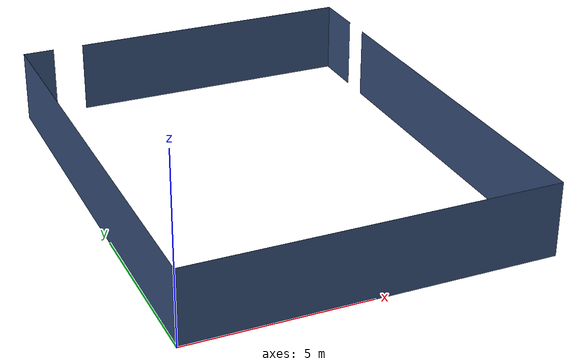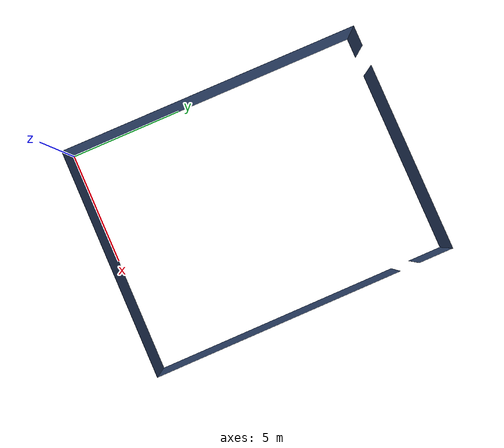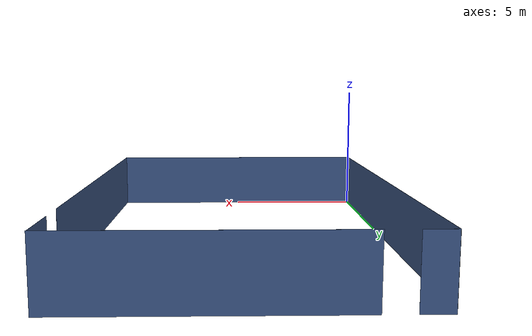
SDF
<?xml version="1.0" ?>
<sdf version="1.4">
    <model name='apartment_wall_collision'>
      <link name='link'>
        <inertial>
          <mass>50</mass>
          <inertia>
            <ixx>1</ixx>
            <ixy>0</ixy>
            <ixz>0</ixz>
            <iyy>1</iyy>
            <iyz>0</iyz>
            <izz>1</izz>
          </inertia>
        </inertial>
        <visual name='wall_x00y00_x00y15'>
          <pose>-0.002 6.59 1.04 0 0 0</pose>
          <geometry>
            <box>
              <size>0.002 13.2 2.08</size>
            </box>
          </geometry>
          <material>
            <name>cornflowerblue_transparency1</name>
            <ambient>0.392 0.584 0.929 1</ambient>
            <diffuse>0.196 0.292 0.4645 1</diffuse>
            <scene_blend>alpha_blend</scene_blend>
            <depth_write>off</depth_write>
          </material>
        </visual>
        <collision name='wall_x00y00_x00y15'>
          <pose>-0.002 6.59 1.04 0 0 0</pose>
          <geometry>
            <box>
              <size>0.002 13.2 2.08</size>
            </box>
          </geometry>
          <max_contacts>10</max_contacts>
          <surface>
            <bounce/>
            <friction>
              <ode/>
            </friction>
            <contact>
              <ode/>
            </contact>
          </surface>
        </collision>
        <visual name='wall_x00y00_x13y00'>
          <pose>5.0375 -0.002 1.04 0 0 0</pose>
          <geometry>
            <box>
              <size>10.08 0.002 2.08</size>
            </box>
          </geometry>
          <material>
            <name>cornflowerblue_transparency1</name>
            <ambient>0.392 0.584 0.929 1</ambient>
            <diffuse>0.196 0.292 0.4645 1</diffuse>
            <scene_blend>alpha_blend</scene_blend>
            <depth_write>off</depth_write>
          </material>
        </visual>
        <collision name='wall_x00y00_x13y00'>
          <pose>5.0375 -0.002 1.04 0 0 0</pose>
          <geometry>
            <box>
              <size>10.08 0.002 2.08</size>
            </box>
          </geometry>
          <max_contacts>10</max_contacts>
          <surface>
            <bounce/>
            <friction>
              <ode/>
            </friction>
            <contact>
              <ode/>
            </contact>
          </surface>
        </collision>
        <visual name='wall_x13y00_x13y12'>
          <pose>10.077 5.42 1.04 0 0 0</pose>
          <geometry>
            <box>
              <size>0.002 10.84 2.08</size>
            </box>
          </geometry>
          <material>
            <name>cornflowerblue_transparency1</name>
            <ambient>0.392 0.584 0.929 1</ambient>
            <diffuse>0.196 0.292 0.4645 1</diffuse>
            <scene_blend>alpha_blend</scene_blend>
            <depth_write>off</depth_write>
          </material>
        </visual>
        <collision name='wall_x13y00_x13y12'>
          <pose>10.077 5.42 1.04 0 0 0</pose>
          <geometry>
            <box>
              <size>0.002 10.84 2.08</size>
            </box>
          </geometry>
          <max_contacts>10</max_contacts>
          <surface>
            <bounce/>
            <friction>
              <ode/>
            </friction>
            <contact>
              <ode/>
            </contact>
          </surface>
        </collision>
        <visual name='wall_x13y14_x13y16'>
          <pose>10.077 12.43 1.04 0 0 0</pose>
          <geometry>
            <box>
              <size>0.002 1.5 2.08</size>
            </box>
          </geometry>
          <material>
            <name>cornflowerblue_transparency1</name>
            <ambient>0.392 0.584 0.929 1</ambient>
            <diffuse>0.196 0.292 0.4645 1</diffuse>
            <scene_blend>alpha_blend</scene_blend>
            <depth_write>off</depth_write>
          </material>
        </visual>
        <collision name='wall_x13y14_x13y16'>
          <pose>10.077 12.43 1.04 0 0 0</pose>
          <geometry>
            <box>
              <size>0.002 1.5 2.08</size>
            </box>
          </geometry>
          <max_contacts>10</max_contacts>
          <surface>
            <bounce/>
            <friction>
              <ode/>
            </friction>
            <contact>
              <ode/>
            </contact>
          </surface>
        </collision>
        <visual name='wall_x00y16_x01y16'>
          <pose>0.4525 13.182 1.04 0 0 0</pose>
          <geometry>
            <box>
              <size>0.904 0.002 2.08</size>
            </box>
          </geometry>
          <material>
            <name>cornflowerblue_transparency1</name>
            <ambient>0.392 0.584 0.929 1</ambient>
            <diffuse>0.196 0.292 0.4645 1</diffuse>
            <scene_blend>alpha_blend</scene_blend>
            <depth_write>off</depth_write>
          </material>
        </visual>
        <collision name='wall_x00y16_x01y16'>
          <pose>0.4525 13.182 1.04 0 0 0</pose>
          <geometry>
            <box>
              <size>0.904 0.002 2.08</size>
            </box>
          </geometry>
          <max_contacts>10</max_contacts>
          <surface>
            <bounce/>
            <friction>
              <ode/>
            </friction>
            <contact>
              <ode/>
            </contact>
          </surface>
        </collision>
        <visual name='wall_x03y16_x13y16'>
          <pose>5.948 13.182 1.04 0 0 0</pose>
          <geometry>
            <box>
              <size>8.30 0.002 2.08</size>
            </box>
          </geometry>
          <material>
            <name>cornflowerblue_transparency1</name>
            <ambient>0.392 0.584 0.929 1</ambient>
            <diffuse>0.196 0.292 0.4645 1</diffuse>
            <scene_blend>alpha_blend</scene_blend>
            <depth_write>off</depth_write>
          </material>
        </visual>
        <collision name='wall_x03y16_x13y16'>
          <pose>5.948 13.182 1.04 0 0 0</pose>
          <geometry>
            <box>
              <size>8.30 0.002 2.08</size>
            </box>
          </geometry>
          <max_contacts>10</max_contacts>
          <surface>
            <bounce/>
            <friction>
              <ode/>
            </friction>
            <contact>
              <ode/>
            </contact>
          </surface>
        </collision>
        <velocity_decay>
          <linear>0</linear>
          <angular>0</angular>
        </velocity_decay>
        <self_collide>0</self_collide>
        <kinematic>0</kinematic>
        <gravity>1</gravity>
      </link>
      <static>1</static>
    </model>
</sdf>
